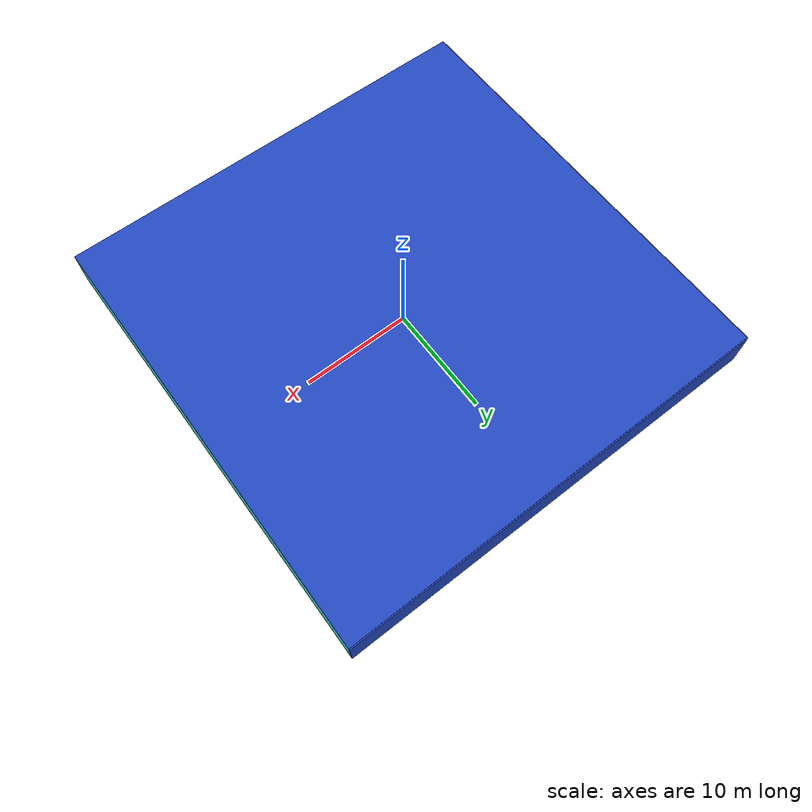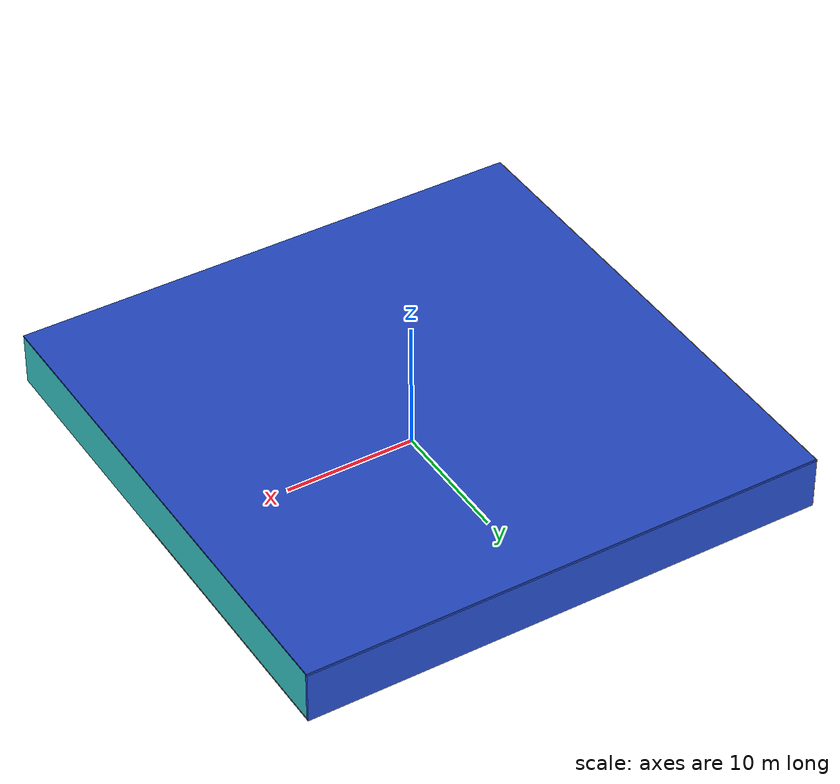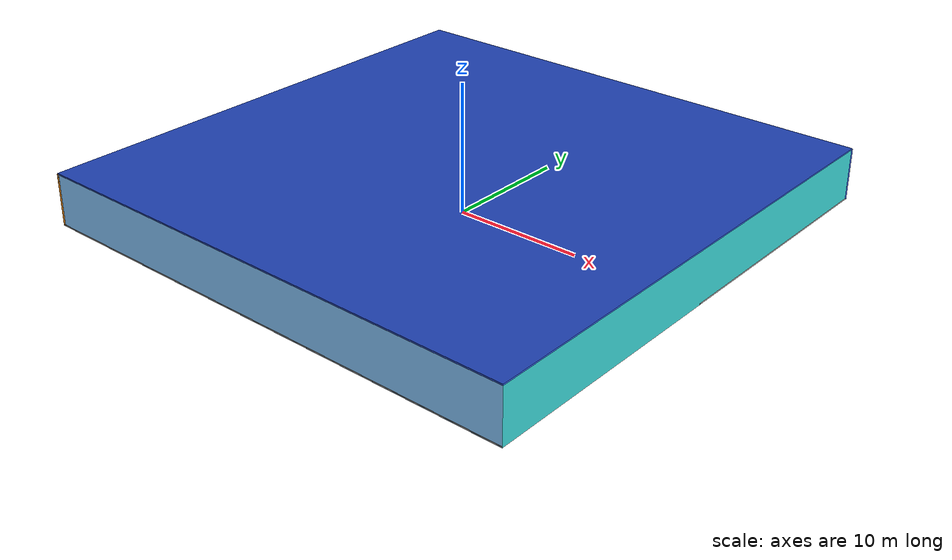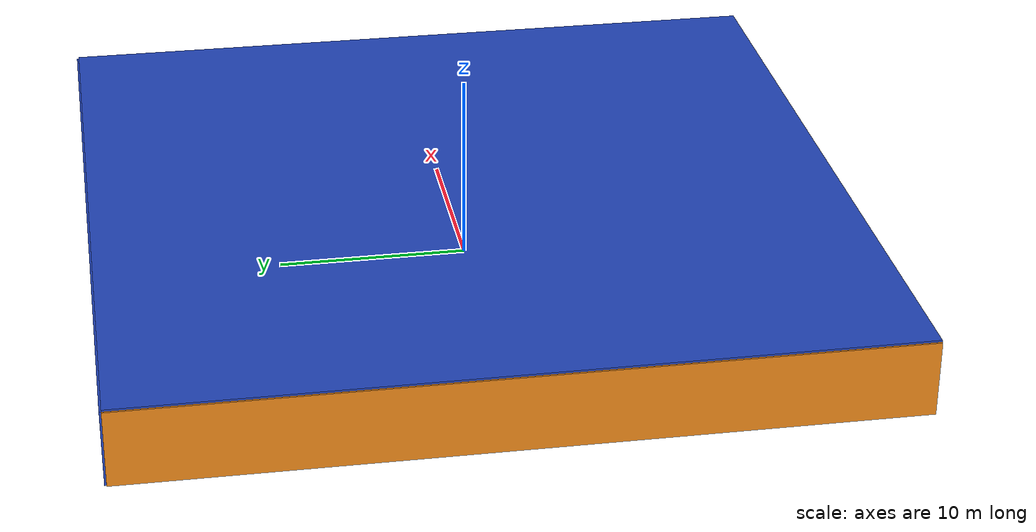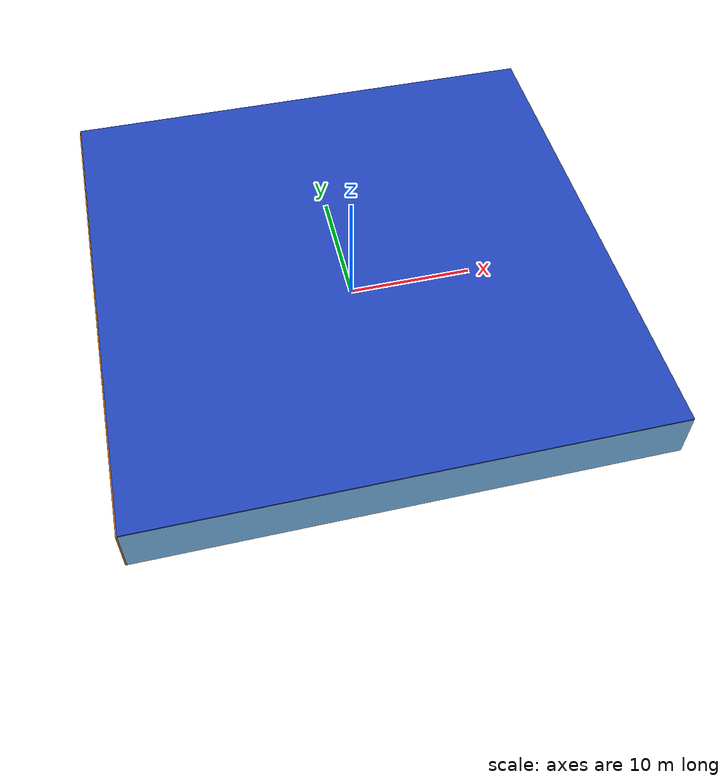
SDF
<sdf version="1.4">
 <world name="default">
  <physics type="ode">
   <max_step_size>0.001</max_step_size>
   <real_time_factor>1</real_time_factor>
   <real_time_update_rate>1000</real_time_update_rate>
   <gravity>0 0 -9.8</gravity>
  </physics>
  <scene><ambient>0.4 0.4 0.4 1</ambient><background>0.7 0.7 0.7 1</background><shadows>1</shadows></scene>
  <model name="Surrounding">
   <static>1</static>
   <link name="Ceiling">
    <collision name="Ceiling_Collision"><geometry><box><size>40 40 0.1</size></box></geometry></collision>
    <visual name="Ceiling_Visual">
     <geometry><box><size>40 40 0.1</size></box></geometry>
     <material>
      <script><uri>file://media/materials/scripts/gazebo.material</uri><name>Gazebo/BlueLaser</name></script>
     </material>
    </visual>
    <pose>0 0 4.05 0 0 0</pose>
   </link>
   <link name="Wall_South">
    <collision name="Wall_South_Collision">
     <geometry><box><size>40 0 4</size></box></geometry>
     <pose>0 0 2 0 -0 0</pose>
    </collision>
    <visual name="Wall_South_Visual">
     <pose>0 0 2 0 -0 0</pose>
     <geometry><box><size>40 0 4</size></box></geometry>
     <material>
      <script><uri>file://media/materials/scripts/gazebo.material</uri><name>Gazebo/SkyBlue</name></script>
     </material>
    </visual>
    <velocity_decay><linear>0</linear><angular>0</angular></velocity_decay>
    <pose>0 -20 0 0 -0 0</pose>
   </link>
   <link name="Wall_East">
    <collision name="Wall_21_Collision">
     <geometry><box><size>40 0 4</size></box></geometry>
     <pose>0 0 2 0 -0 0</pose>
    </collision>
    <visual name="Wall_21_Visual">
     <pose>0 0 2 0 -0 0</pose>
     <geometry><box><size>40 0 4</size></box></geometry>
     <material>
      <script>
       <uri>file://media/materials/scripts/gazebo.material</uri>
       <name>Gazebo/TurquoiseGlowOutline</name>
      </script>
     </material>
    </visual>
    <velocity_decay><linear>0</linear><angular>0</angular></velocity_decay>
    <pose>20 0 0 0 -0 1.5708</pose>
   </link>
   <link name="Wall_North">
    <collision name="Wall_22_Collision">
     <geometry><box><size>40 0.2 4</size></box></geometry>
     <pose>0 0 2 0 -0 0</pose>
    </collision>
    <visual name="Wall_22_Visual">
     <pose>0 0 2 0 -0 0</pose>
     <geometry><box><size>40 0.2 4</size></box></geometry>
     <material>
      <script><uri>file://media/materials/scripts/gazebo.material</uri><name>Gazebo/BlueLaser</name></script>
     </material>
    </visual>
    <velocity_decay><linear>0</linear><angular>0</angular></velocity_decay>
    <pose>0 20 0 0 -0 0</pose>
   </link>
   <link name="Wall_West">
    <collision name="Wall_23_Collision">
     <geometry><box><size>40 0.2 4</size></box></geometry>
     <pose>0 0 2 0 -0 0</pose>
    </collision>
    <visual name="Wall_23_Visual">
     <pose>0 0 2 0 -0 0</pose>
     <geometry><box><size>40 0.2 4</size></box></geometry>
     <material>
      <script><uri>file://media/materials/scripts/gazebo.material</uri><name>Gazebo/Orange</name></script>
     </material>
    </visual>
    <velocity_decay><linear>0</linear><angular>0</angular></velocity_decay>
    <pose>-20 0 0 0 0 -1.5708</pose>
   </link>
   <link name="Ground_link">
    <collision name="collision">
     <pose>0 0 .05 0 -0 0</pose>
     <geometry><box><size>40 40 0.1</size></box></geometry>
    </collision>
    <visual name="visual">
     <pose>0 0 .05 0 -0 0</pose>
     <geometry><box><size>40 40 0.1</size></box></geometry>
     <material>
      <script><uri>file://media/materials/scripts/gazebo.material</uri><name>Gazebo/Grey</name></script>
     </material>
    </visual>
   </link>
   <static>1</static>
  </model>
  <spherical_coordinates>
   <surface_model>EARTH_WGS84</surface_model>
   <latitude_deg>0</latitude_deg>
   <longitude_deg>0</longitude_deg>
   <elevation>0</elevation>
   <heading_deg>0</heading_deg>
  </spherical_coordinates>
  <light name="lightball_0" type="diffuse">
   <diffuse>0.8 0.8 0.8 1</diffuse>
   <specular>0.2 0.2 0.2 1</specular>
   <attenuation>
    <range>100</range>
    <constant>0.7</constant>
    <linear>0.01</linear>
    <quadratic>0.001</quadratic>
   </attenuation>
   <direction>-0.5 0.1 -0.9</direction>
   <pose>-11.5920949193 4.22309770371 3.52123441416 0 0 0</pose>
  </light>
  <light name="lightball_1" type="diffuse">
   <diffuse>0.8 0.8 0.8 1</diffuse>
   <specular>0.2 0.2 0.2 1</specular>
   <attenuation>
    <range>100</range>
    <constant>0.7</constant>
    <linear>0.01</linear>
    <quadratic>0.001</quadratic>
   </attenuation>
   <direction>-0.5 0.1 -0.9</direction>
   <pose>15.3316688037 -12.6583758642 2.84213437725 0 0 0</pose>
  </light>
  <light name="lightball_2" type="diffuse">
   <diffuse>0.8 0.8 0.8 1</diffuse>
   <specular>0.2 0.2 0.2 1</specular>
   <attenuation>
    <range>100</range>
    <constant>0.7</constant>
    <linear>0.01</linear>
    <quadratic>0.001</quadratic>
   </attenuation>
   <direction>-0.5 0.1 -0.9</direction>
   <pose>3.91212411213 -12.4605824792 1.37887609615 0 0 0</pose>
  </light>
  <include>
   <uri>model://construction_cone</uri>
   <pose>-17.6014024779 -11.3662673147 0 0 0 2.57267349541</pose>
  </include>
  <include>
   <uri>model://textured_shapes</uri>
   <pose>-16.6927477403 2.98027056305 0 0 0 0.601903100381</pose>
  </include>
  <include>
   <uri>model://textured_shapes</uri>
   <pose>-17.1576537933 15.3987216747 0 0 0 0.197816853465</pose>
  </include>
  <include><uri>model://cabinet</uri><pose>-14.6402632181 9.1057460581 0 0 0 0.825897001814</pose></include>
  <include>
   <uri>model://robocup_3Dsim_goal</uri>
   <pose>-14.6416289446 15.6907555353 0 0 0 2.15839835383</pose>
  </include>
  <include><uri>model://table</uri><pose>-12.092673762 12.9861138036 0 0 0 1.19261409389</pose></include>
  <include><uri>model://table</uri><pose>-6.67640922076 -16.5142622282 0 0 0 2.83518888482</pose></include>
  <include>
   <uri>model://textured_shapes</uri>
   <pose>-4.9967935102 -12.6791710991 0 0 0 0.180091867665</pose>
  </include>
  <include>
   <uri>model://construction_cone</uri>
   <pose>-2.04062168765 -14.4122668699 0 0 0 1.27325083844</pose>
  </include>
  <include><uri>model://cabinet</uri><pose>4.12107870694 9.87165191643 0 0 0 2.01119115332</pose></include>
  <include><uri>model://cabinet</uri><pose>3.48973891864 12.5489620149 0 0 0 2.56580022789</pose></include>
  <include>
   <uri>model://robocup_3Dsim_goal</uri>
   <pose>6.16688678065 1.6487847923 0 0 0 2.45680497689</pose>
  </include>
  <include>
   <uri>model://robocup_3Dsim_goal</uri>
   <pose>5.675521728 16.2379449015 0 0 0 2.75574315194</pose>
  </include>
  <include>
   <uri>model://construction_cone</uri>
   <pose>9.04107719441 14.5251123646 0 0 0 2.03995749319</pose>
  </include>
  <include>
   <uri>model://textured_shapes</uri>
   <pose>11.6806645737 -6.25570268952 0 0 0 1.18065245153</pose>
  </include>
  <include><uri>model://cabinet</uri><pose>12.8437624986 0.476934333874 0 0 0 2.23332418672</pose></include>
  <include>
   <uri>model://construction_cone</uri>
   <pose>19.3602950216 -16.5142967897 0 0 0 2.92190578623</pose>
  </include>
  <include><uri>model://cabinet</uri><pose>18.0515099935 -15.4703628274 0 0 0 2.12200732313</pose></include>
  <include>
   <uri>model://construction_cone</uri>
   <pose>17.7484343151 -2.5942475564 0 0 0 1.45020385321</pose>
  </include>
 </world>
</sdf>

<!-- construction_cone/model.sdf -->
<sdf version="1.5">
  <model name="Construction Cone">
    <link name="link">
      <collision name="collision">
        <geometry>
          <mesh>
            <scale>10 10 10</scale>
            <uri>file://isr-testbed/construction_cone/meshes/construction_cone.dae</uri>
          </mesh>
        </geometry>
      </collision>
      <visual name="visual">
        <geometry>
          <mesh>
            <scale>10 10 10</scale>
            <uri>file://isr-testbed/construction_cone/meshes/construction_cone.dae</uri>
          </mesh>
        </geometry>
      </visual>
    </link>
  </model>
</sdf>

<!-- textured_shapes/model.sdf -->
<sdf version="1.6">
  <model name="textured_shapes">
    <pose>0 0 0.5 0 0 0</pose>
    <link name="box">
      <pose>0 -1.5 0 0 0 0</pose>
      <collision name="collision">
        <geometry>
          <box>
            <size>1 1 1</size>
          </box>
        </geometry>
      </collision>
      <visual name="visual">
        <geometry>
          <box>
            <size>1 1 1</size>
          </box>
        </geometry>
        <material>
          <script>
            <uri>model://../model_source/models/textured_shapes/materials/scripts</uri>
            <uri>model://../model_source/models/textured_shapes/materials/textures</uri>
            <name>TexturedShape/Squares</name>
          </script>
        </material>
      </visual>
    </link>
    <link name="sphere">
      <collision name="collision">
        <geometry>
          <sphere>
            <radius>0.5</radius>
          </sphere>
        </geometry>
      </collision>
      <visual name="visual">
        <geometry>
          <sphere>
            <radius>0.5</radius>
          </sphere>
        </geometry>
        <material>
          <script>
            <uri>model://../model_source/models/textured_shapes/materials/scripts</uri>
            <uri>model://../model_source/models/textured_shapes/materials/textures</uri>
            <name>TexturedShape/Squares</name>
          </script>
        </material>
      </visual>
    </link>
    <link name="cylinder">
      <pose>0 1.5 0 0 0 0</pose>
      <collision name="collision">
        <geometry>
          <cylinder>
            <radius>0.5</radius>
            <length>1</length>
          </cylinder>
        </geometry>
      </collision>
      <visual name="visual">
        <geometry>
          <cylinder>
            <radius>0.5</radius>
            <length>1</length>
          </cylinder>
        </geometry>
        <material>
          <script>
            <uri>model://../model_source/models/textured_shapes/materials/scripts</uri>
            <uri>model://../model_source/models/textured_shapes/materials/textures</uri>
            <name>TexturedShape/Squares</name>
          </script>
        </material>
      </visual>
    </link>
  </model>
</sdf>

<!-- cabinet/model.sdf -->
<sdf version="1.5">
  <model name="cabinet">
    <static>true</static>
    <link name="cabinet_bottom_plate">
      <inertial>
        <pose>0 0 -1 0 0 0</pose>
        <inertia>
          <ixx>2.050000</ixx>
          <ixy>0</ixy>
          <ixz>0</ixz>
          <iyy>2.050000</iyy>
          <iyz>0</iyz>
          <izz>2.050000</izz>
        </inertia>
        <mass>25.000000</mass>
      </inertial>
      <collision name="cabinet_bottom_plate_geom">
        <pose>0 0 0.010000 0 0 0</pose>
        <geometry>
          <box>
            <size>0.450000 0.450000 0.020000</size>
          </box>
        </geometry>
      </collision>
      <visual name="cabinet_bottom_plate_geom_visual">
        <pose>0 0 0.010000 0 0 0</pose>
        <geometry>
          <box>
            <size>0.450000 0.450000 0.020000</size>
          </box>
        </geometry>
        <material>
          <script>
            <uri>model://media/materials/scripts/gazebo.material</uri>
            <name>Gazebo/Wood</name>
          </script>
        </material>
      </visual>
      <collision name="cabinet_bottom_plate_geom_cabinet_back_plate">
        <pose>0.235000 0 0.510000 0 0 0</pose>
        <geometry>
          <box>
            <size>0.020000 0.450000 1.020000</size>
          </box>
        </geometry>
      </collision>
      <visual name="cabinet_bottom_plate_geom_cabinet_back_plate_visual">
        <pose>0.235000 0 0.510000 0 0 0</pose>
        <geometry>
          <box>
            <size>0.020000 0.450000 1.020000</size>
          </box>
        </geometry>
        <material>
          <script>
            <uri>model://media/materials/scripts/gazebo.material</uri>
            <name>Gazebo/Wood</name>
          </script>
        </material>
      </visual>
      <collision name="cabinet_bottom_plate_geom_cabinet_left_plate">
        <pose>0 0.235000 0.510000 0 0 0</pose>
        <geometry>
          <box>
            <size>0.450000 0.020000 1.020000</size>
          </box>
        </geometry>
      </collision>
      <visual name="cabinet_bottom_plate_geom_cabinet_left_plate_visual">
        <pose>0 0.235000 0.510000 0 0 0</pose>
        <geometry>
          <box>
            <size>0.450000 0.020000 1.020000</size>
          </box>
        </geometry>
        <material>
          <script>
            <uri>model://media/materials/scripts/gazebo.material</uri>
            <name>Gazebo/Wood</name>
          </script>
        </material>
      </visual>
      <collision name="cabinet_bottom_plate_geom_cabinet_middle_plate">
        <pose>0 0 0.510000 0 0 0</pose>
        <geometry>
          <box>
            <size>0.450000 0.450000 0.020000</size>
          </box>
        </geometry>
      </collision>
      <visual name="cabinet_bottom_plate_geom_cabinet_middle_plate_visual">
        <pose>0 0 0.510000 0 0 0</pose>
        <geometry>
          <box>
            <size>0.450000 0.450000 0.020000</size>
          </box>
        </geometry>
        <material>
          <script>
            <uri>model://media/materials/scripts/gazebo.material</uri>
            <name>Gazebo/Wood</name>
          </script>
        </material>
      </visual>
      <collision name="cabinet_bottom_plate_geom_cabinet_right_plate">
        <pose>0 -0.235000 0.510000 0 0 0</pose>
        <geometry>
          <box>
            <size>0.450000 0.020000 1.020000</size>
          </box>
        </geometry>
      </collision>
      <visual name="cabinet_bottom_plate_geom_cabinet_right_plate_visual">
        <pose>0 -0.235000 0.510000 0 0 0</pose>
        <geometry>
          <box>
            <size>0.450000 0.020000 1.020000</size>
          </box>
        </geometry>
        <material>
          <script>
            <uri>model://media/materials/scripts/gazebo.material</uri>
            <name>Gazebo/Wood</name>
          </script>
        </material>
      </visual>
      <collision name="cabinet_bottom_plate_geom_cabinet_top_plate">
        <pose>0 0 1.010000 0 0 0</pose>
        <geometry>
          <box>
            <size>0.450000 0.450000 0.020000</size>
          </box>
        </geometry>
      </collision>
      <visual name="cabinet_bottom_plate_geom_cabinet_top_plate_visual">
        <pose>0 0 1.010000 0 0 0</pose>
        <geometry>
          <box>
            <size>0.450000 0.450000 0.020000</size>
          </box>
        </geometry>
        <material>
          <script>
            <uri>model://media/materials/scripts/gazebo.material</uri>
            <name>Gazebo/Wood</name>
          </script>
        </material>
      </visual>
    </link>
  </model>
</sdf>

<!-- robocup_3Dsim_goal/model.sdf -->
<sdf version="1.5">
  <model name="robocup_3d_goal">
    <static>true</static>
    <link name="left_post">
      <pose>0 1.05 0.45 0 0 0</pose>
      <collision name="collision">
        <geometry>
          <cylinder>
            <radius>0.05</radius>
            <length>0.9</length>
          </cylinder>
        </geometry>
      </collision>
      <visual name="visual">
        <geometry>
          <cylinder>
            <radius>0.05</radius>
            <length>0.9</length>
          </cylinder>
        </geometry>
        <material>
          <script>
            <uri>file://media/materials/scripts/gazebo.material</uri>
            <name>Gazebo/ZincYellow</name>
          </script>
        </material>
      </visual>
    </link>
    <link name="left_support_horiz_lower">
      <pose>0.30 1.05 0.01 0 0 0</pose>
      <collision name="collision">
        <geometry>
          <box>
            <size>0.50 0.02 0.02</size>
          </box>
        </geometry>
      </collision>
      <visual name="visual">
        <geometry>
          <box>
            <size>0.50 0.02 0.02</size>
          </box>
        </geometry>
        <material>
          <script>
            <uri>file://media/materials/scripts/gazebo.material</uri>
            <name>Gazebo/White</name>
          </script>
        </material>
      </visual>
    </link>
    <link name="left_support_horiz_upper">
      <pose>0.30 1.05 0.79 0 0 0</pose>
      <collision name="collision">
        <geometry>
          <box>
            <size>0.50 0.02 0.02</size>
          </box>
        </geometry>
      </collision>
      <visual name="visual">
        <geometry>
          <box>
            <size>0.50 0.02 0.02</size>
          </box>
        </geometry>
        <material>
          <script>
            <uri>file://media/materials/scripts/gazebo.material</uri>
            <name>Gazebo/White</name>
          </script>
        </material>
      </visual>
    </link>
    <link name="left_support_vertical">
      <pose>0.56 1.05 0.4 0 1.5708 0</pose>
      <collision name="collision">
        <geometry>
          <box>
            <size>0.80 0.02 0.02</size>
          </box>
        </geometry>
      </collision>
      <visual name="visual">
        <geometry>
          <box>
            <size>0.80 0.02 0.02</size>
          </box>
        </geometry>
        <material>
          <script>
            <uri>file://media/materials/scripts/gazebo.material</uri>
            <name>Gazebo/White</name>
          </script>
        </material>
      </visual>
    </link>
    <link name="right_support_horiz_lower">
      <pose>0.30 -1.05 0.01 0 0 0</pose>
      <collision name="collision">
        <geometry>
          <box>
            <size>0.50 0.02 0.02</size>
          </box>
        </geometry>
      </collision>
      <visual name="visual">
        <geometry>
          <box>
            <size>0.50 0.02 0.02</size>
          </box>
        </geometry>
        <material>
          <script>
            <uri>file://media/materials/scripts/gazebo.material</uri>
            <name>Gazebo/White</name>
          </script>
        </material>
      </visual>
    </link>
    <link name="right_support_horiz_upper">
      <pose>0.30 -1.05 0.79 0 0 0</pose>
      <collision name="collision">
        <geometry>
          <box>
            <size>0.50 0.02 0.02</size>
          </box>
        </geometry>
      </collision>
      <visual name="visual">
        <geometry>
          <box>
            <size>0.50 0.02 0.02</size>
          </box>
        </geometry>
        <material>
          <script>
            <uri>file://media/materials/scripts/gazebo.material</uri>
            <name>Gazebo/White</name>
          </script>
        </material>
      </visual>
    </link>
    <link name="right_support_vertical">
      <pose>0.56 -1.05 0.4 0 1.5708 0</pose>
      <collision name="collision">
        <geometry>
          <box>
            <size>0.80 0.02 0.02</size>
          </box>
        </geometry>
      </collision>
      <visual name="visual">
        <geometry>
          <box>
            <size>0.80 0.02 0.02</size>
          </box>
        </geometry>
        <material>
          <script>
            <uri>file://media/materials/scripts/gazebo.material</uri>
            <name>Gazebo/White</name>
          </script>
        </material>
      </visual>
    </link>
    <link name="center_support_horiz_lower">
      <pose>0.56 0 0.01 0 1.5708 0</pose>
      <collision name="collision">
        <geometry>
          <box>
            <size>0.02 2.08 0.02</size>
          </box>
        </geometry>
      </collision>
      <visual name="visual">
        <geometry>
          <box>
            <size>0.02 2.08 0.02</size>
          </box>
        </geometry>
        <material>
          <script>
            <uri>file://media/materials/scripts/gazebo.material</uri>
            <name>Gazebo/White</name>
          </script>
        </material>
      </visual>
    </link>
    <link name="center_support_horiz_upper">
      <pose>0.56 0 0.79 0 1.5708 0</pose>
      <collision name="collision">
        <geometry>
          <box>
            <size>0.02 2.08 0.02</size>
          </box>
        </geometry>
      </collision>
      <visual name="visual">
        <geometry>
          <box>
            <size>0.02 2.08 0.02</size>
          </box>
        </geometry>
        <material>
          <script>
            <uri>file://media/materials/scripts/gazebo.material</uri>
            <name>Gazebo/White</name>
          </script>
        </material>
      </visual>
    </link>
    <link name="right_post">
      <pose>0 -1.05 0.45 0 0 0</pose>
      <collision name="collision">
        <geometry>
          <cylinder>
            <radius>0.05</radius>
            <length>0.9</length>
          </cylinder>
        </geometry>
      </collision>
      <visual name="visual">
        <geometry>
          <cylinder>
            <radius>0.05</radius>
            <length>0.9</length>
          </cylinder>
        </geometry>
        <material>
          <script>
            <uri>file://media/materials/scripts/gazebo.material</uri>
            <name>Gazebo/ZincYellow</name>
          </script>
        </material>
      </visual>
    </link>
    <link name="crossbar">
      <pose>0 0 0.85 1.57 1.57 0</pose>
      <collision name="collision">
        <geometry>
          <cylinder>
            <radius>0.05</radius>
            <length>2.0</length>
          </cylinder>
        </geometry>
      </collision>
      <visual name="visual">
        <geometry>
          <cylinder>
            <radius>0.05</radius>
            <length>2.0</length>
          </cylinder>
        </geometry>
        <material>
          <script>
            <uri>file://media/materials/scripts/gazebo.material</uri>
            <name>Gazebo/ZincYellow</name>
          </script>
        </material>
      </visual>
    </link>
    <link name="center_net">
      <pose>0.56 0 0.40 0 0 0</pose>
      <collision name="collision">
        <geometry>
          <box>
            <size>0.01 2.1 0.80</size>
          </box>
        </geometry>
      </collision>
      <visual name="visual">
        <geometry>
          <box>
            <size>0.01 2.1 0.80</size>
          </box>
        </geometry>
        <material>
          <script>
            <uri>model://../model_source/models/robocup09_spl_field/materials/scripts/</uri>
            <uri>model://../model_source/models/robocup09_spl_field/materials/textures/</uri>
            <name>RoboCup/Net</name>
          </script>
        </material>
      </visual>
    </link>
    <link name="left_net">
      <pose>0.30 1.05 0.40 0 0 0</pose>
      <collision name="collision">
        <geometry>
          <box>
            <size>0.50 0.01 0.76</size>
          </box>
        </geometry>
      </collision>
      <visual name="visual">
        <geometry>
          <box>
            <size>0.50 0.01 0.76</size>
          </box>
        </geometry>
        <material>
          <script>
            <uri>model://../model_source/models/robocup09_spl_field/materials/scripts/</uri>
            <uri>model://../model_source/models/robocup09_spl_field/materials/textures/</uri>
            <name>RoboCup/Net</name>
          </script>
        </material>
      </visual>
    </link>
    <link name="right_net">
      <pose>0.30 -1.05 0.40 0 0 0</pose>
      <collision name="collision">
        <geometry>
          <box>
            <size>0.50 0.01 0.76</size>
          </box>
        </geometry>
      </collision>
      <visual name="visual">
        <geometry>
          <box>
            <size>0.50 0.01 0.76</size>
          </box>
        </geometry>
        <material>
          <script>
            <uri>model://../model_source/models/robocup09_spl_field/materials/scripts/</uri>
            <uri>model://../model_source/models/robocup09_spl_field/materials/textures/</uri>
            <name>RoboCup/Net</name>
          </script>
        </material>
      </visual>
    </link>
  </model>
</sdf>

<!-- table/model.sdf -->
<sdf version="1.5">
  <model name="table">
    <static>true</static>
    <link name="link">
      <collision name="surface">
        <pose>0 0 1.0 0 0 0</pose>
        <geometry>
          <box>
            <size>1.5 0.8 0.03</size>
          </box>
        </geometry>
        <surface>
          <friction>
            <ode>
              <mu>0.6</mu>
              <mu2>0.6</mu2>
            </ode>
          </friction>
        </surface>
      </collision>
      <visual name="visual1">
        <pose>0 0 1.0 0 0 0</pose>
        <geometry>
          <box>
            <size>1.5 0.8 0.03</size>
          </box>
        </geometry>
        <material>
          <script>
            <uri>model://media/materials/scripts/gazebo.material</uri>
            <name>Gazebo/Wood</name>
          </script>
        </material>
      </visual>
      <collision name="front_left_leg">
        <pose>0.68 0.38 0.5 0 0 0</pose>
        <geometry>
          <cylinder>
            <radius>0.02</radius>
            <length>1.0</length>
          </cylinder>
        </geometry>
      </collision>
      <visual name="front_left_leg">
        <pose>0.68 0.38 0.5 0 0 0</pose>
        <geometry>
          <cylinder>
            <radius>0.02</radius>
            <length>1.0</length>
          </cylinder>
        </geometry>
        <material>
          <script>
            <uri>model://media/materials/scripts/gazebo.material</uri>
            <name>Gazebo/Grey</name>
          </script>
        </material>
      </visual>
      <collision name="front_right_leg">
        <pose>0.68 -0.38 0.5 0 0 0</pose>
        <geometry>
          <cylinder>
            <radius>0.02</radius>
            <length>1.0</length>
          </cylinder>
        </geometry>
      </collision>
      <visual name="front_right_leg">
        <pose>0.68 -0.38 0.5 0 0 0</pose>
        <geometry>
          <cylinder>
            <radius>0.02</radius>
            <length>1.0</length>
          </cylinder>
        </geometry>
        <material>
          <script>
            <uri>model://media/materials/scripts/gazebo.material</uri>
            <name>Gazebo/Grey</name>
          </script>
        </material>
      </visual>
      <collision name="back_right_leg">
        <pose>-0.68 -0.38 0.5 0 0 0</pose>
        <geometry>
          <cylinder>
            <radius>0.02</radius>
            <length>1.0</length>
          </cylinder>
        </geometry>
      </collision>
      <visual name="back_right_leg">
        <pose>-0.68 -0.38 0.5 0 0 0</pose>
        <geometry>
          <cylinder>
            <radius>0.02</radius>
            <length>1.0</length>
          </cylinder>
        </geometry>
        <material>
          <script>
            <uri>model://media/materials/scripts/gazebo.material</uri>
            <name>Gazebo/Grey</name>
          </script>
        </material>
      </visual>
      <collision name="back_left_leg">
        <pose>-0.68 0.38 0.5 0 0 0</pose>
        <geometry>
          <cylinder>
            <radius>0.02</radius>
            <length>1.0</length>
          </cylinder>
        </geometry>
      </collision>
      <visual name="back_left_leg">
        <pose>-0.68 0.38 0.5 0 0 0</pose>
        <geometry>
          <cylinder>
            <radius>0.02</radius>
            <length>1.0</length>
          </cylinder>
        </geometry>
        <material>
          <script>
            <uri>model://media/materials/scripts/gazebo.material</uri>
            <name>Gazebo/Grey</name>
          </script>
        </material>
      </visual>
    </link>
  </model>
</sdf>
